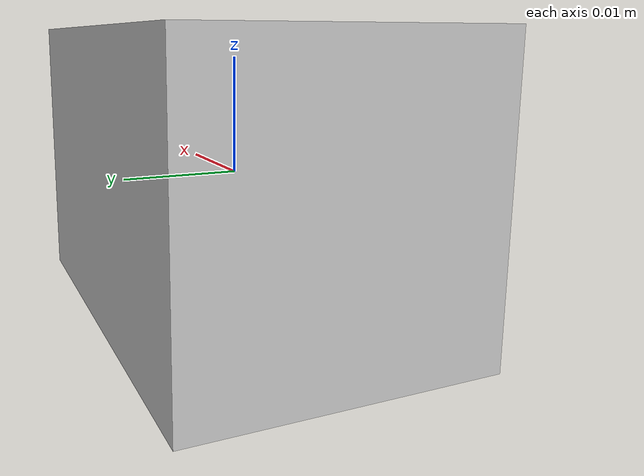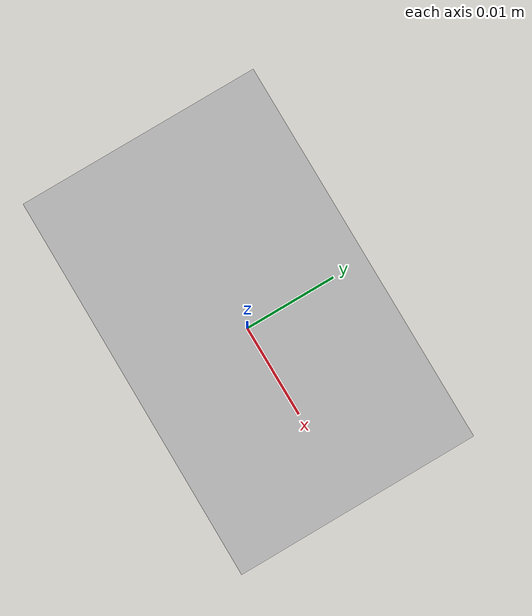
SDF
<?xml version="1.0"?>
<sdf version="1.9">
  <model name="BLOCK_NAME">
    <static>false</static>
    <link name="block_link">
      <pose>0 0 0 0 0 0</pose>
      <inertial>
        <mass>0.05</mass>
        <inertia>
          <ixx>3e-6</ixx><ixy>0</ixy><ixz>0</ixz>
          <iyy>5e-6</iyy><iyz>0</iyz>
          <izz>6e-6</izz>
        </inertia>
      </inertial>
      <collision name="collision">
        <geometry>
          <box><size>0.040 0.025 0.025</size></box>
        </geometry>
      </collision>
      <visual name="visual">
        <geometry>
          <box><size>0.040 0.025 0.025</size></box>
        </geometry>
        <material>
          <ambient>BLOCK_COLOR</ambient>
          <diffuse>BLOCK_COLOR</diffuse>
          <specular>0.1 0.1 0.1 1.0</specular>
        </material>
      </visual>
    </link>
  </model>
</sdf>
